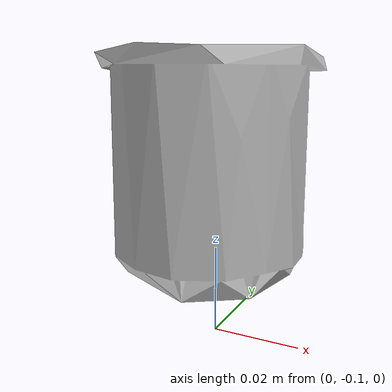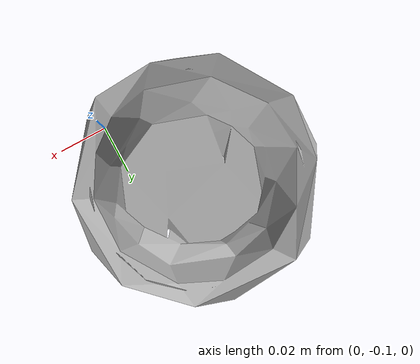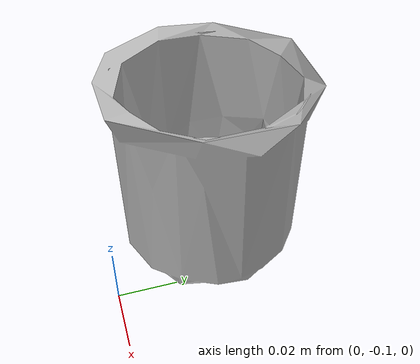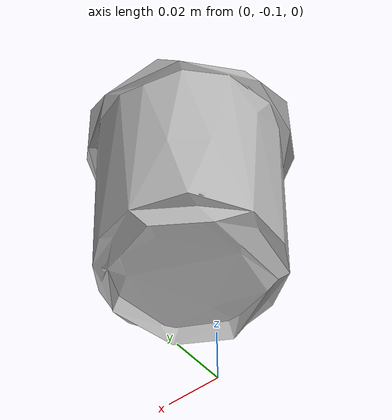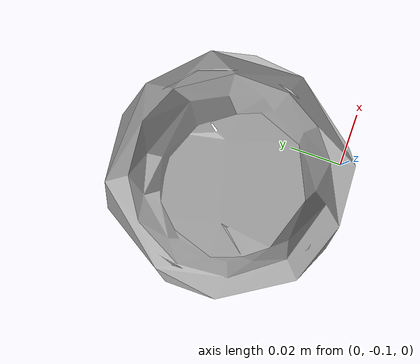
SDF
<?xml version='1.0'?>
<sdf version="1.4">
  <model name="065-d_cups">
    <static>false</static>
    <link name="link">
      <inertial>
        <pose>-0.019698104607163095 -0.06261635250515488 0.03644828835666568 3.1408824155861392 0.0026942410840465475 -0.8108863612100232</pose>
        <mass>0.022369952528761068</mass>
        <inertia>
          <ixx>1.4432843301216064e-05</ixx>
          <ixy>-1.5275687758558106e-21</ixy>
          <ixz>1.1305357945326816e-22</ixz>
          <iyy>1.4401984921994458e-05</iyy>
          <iyz>1.3615032343220064e-22</iyz>
          <izz>1.1773296692552566e-05</izz>
        </inertia>
      </inertial>
      <collision name="collision">
        <geometry>
          <mesh>
            <!-- Use a downsampled mesh for collisions -->
            <uri>model:///065-d_cups/065-d_cups_250_collision.stl</uri>
	        </mesh>
        </geometry>
        <surface>
      </surface>
      </collision>
      <visual name="visual">
        <geometry>
          <mesh>
            <uri>model:///065-d_cups/textured.obj</uri>
	        </mesh>
        </geometry>
        <material>
          <script>
            <uri>model:///065-d_cups/065-d_cups.material</uri>
            <name>065-d_cups</name>
          </script>
        </material>
      </visual>
    </link>
  </model>
</sdf>
